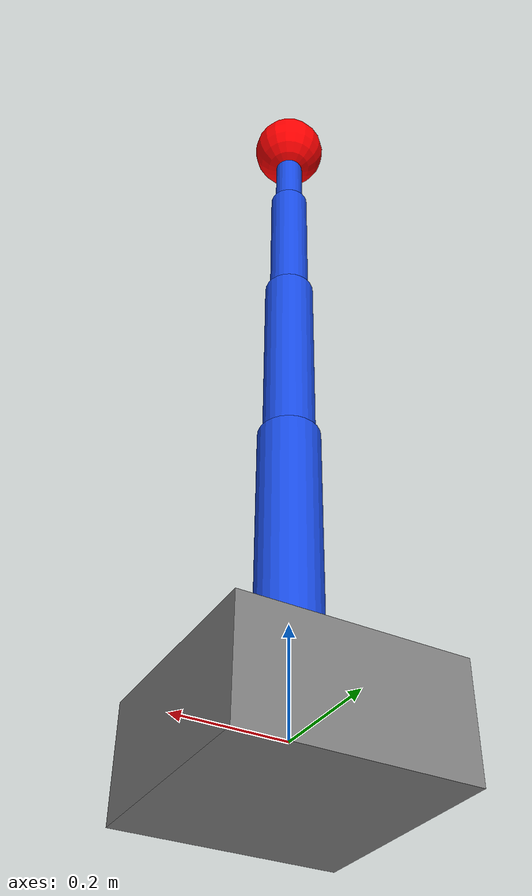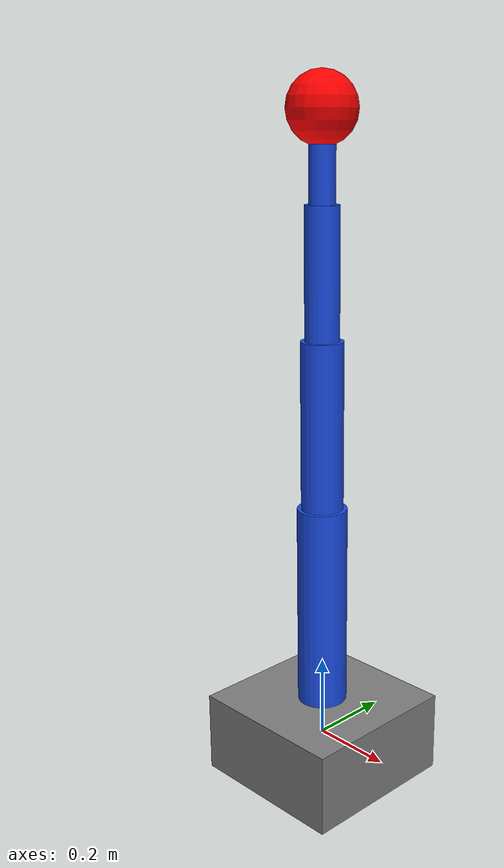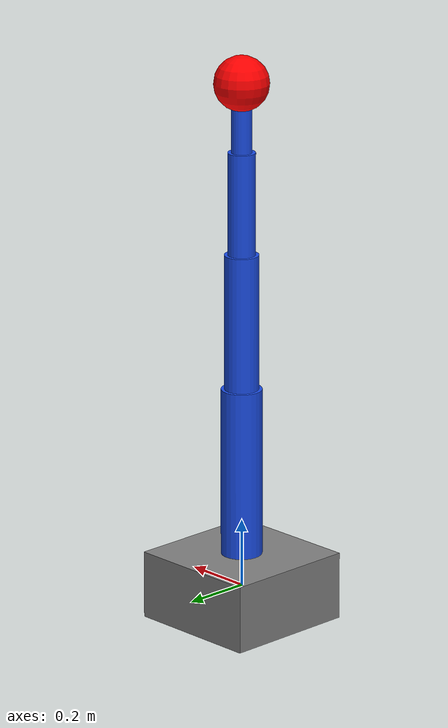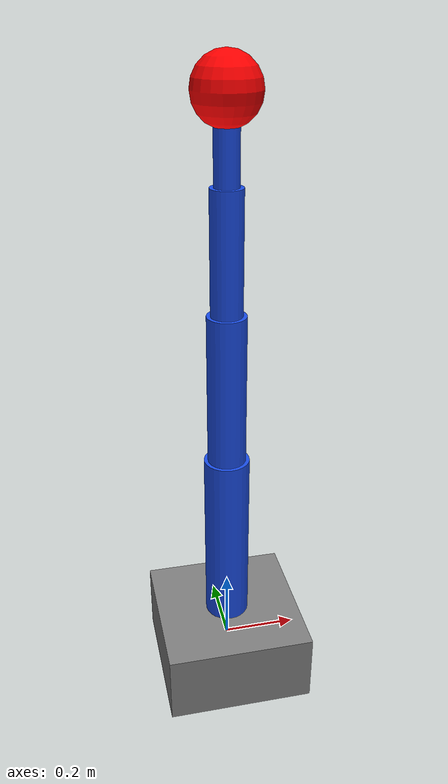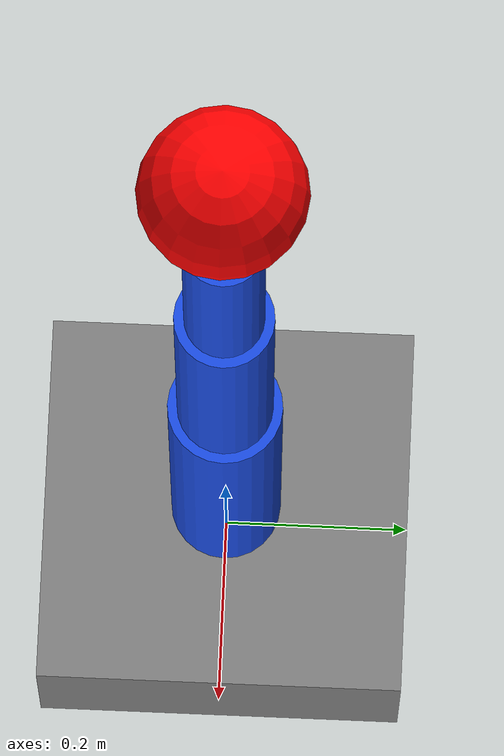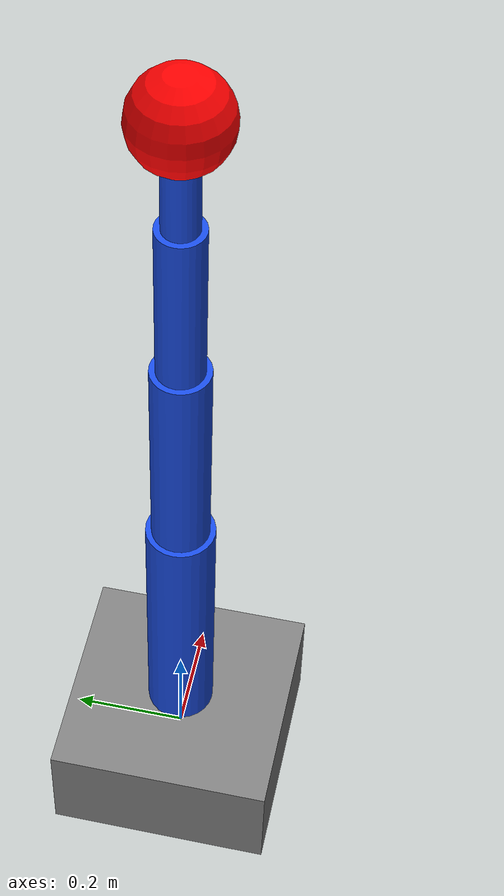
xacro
<?xml version="1.0"?>
<robot xmlns:xacro="http://www.ros.org/wiki/xacro" name="my_robot">

  <!-- Propiedades generales -->
  <xacro:property name="pi" value="3.14159265359"/>

  <!-- Macro para crear eslabones con masa, visual y colision -->
  <xacro:macro name="robot_link" params="name length radius mass">

    <link name="${name}">

      <visual>
        <origin xyz="0 0 ${length/2}" rpy="0 0 0"/>
        <geometry>
          <cylinder length="${length}" radius="${radius}"/>
        </geometry>
        <material name="blue">
          <color rgba="0.1 0.3 0.9 1"/>
        </material>
      </visual>

      <collision>
        <origin xyz="0 0 ${length/2}" rpy="0 0 0"/>
        <geometry>
          <cylinder length="${length}" radius="${radius}"/>
        </geometry>
      </collision>

      <inertial>
        <origin xyz="0 0 ${length/2}" rpy="0 0 0"/>
        <mass value="${mass}"/>
        <inertia
          ixx="${mass*(3*radius*radius+length*length)/12}"
          ixy="0"
          ixz="0"
          iyy="${mass*(3*radius*radius+length*length)/12}"
          iyz="0"
          izz="${mass*radius*radius/2}"/>
      </inertial>

    </link>

  </xacro:macro>

  <!-- Base del robot -->
  <link name="link_base">
    <visual>
      <geometry>
        <box size="0.4 0.4 0.2"/>
      </geometry>
      <material name="gray">
        <color rgba="0.5 0.5 0.5 1"/>
      </material>
    </visual>

    <collision>
      <geometry>
        <box size="0.4 0.4 0.2"/>
      </geometry>
    </collision>

    <inertial>
      <mass value="5.0"/>
      <inertia
        ixx="0.0833"
        ixy="0"
        ixz="0"
        iyy="0.0833"
        iyz="0"
        izz="0.1333"/>
    </inertial>
  </link>

  <!-- Eslabones -->
  <xacro:robot_link name="link_1" length="0.5" radius="0.06" mass="2.0"/>
  <xacro:robot_link name="link_2" length="0.4" radius="0.05" mass="1.5"/>
  <xacro:robot_link name="link_3" length="0.3" radius="0.04" mass="1.0"/>
  <xacro:robot_link name="link_4" length="0.2" radius="0.03" mass="0.5"/>

  <!-- Articulacion 1 -->
  <joint name="joint_1" type="revolute">
    <parent link="link_base"/>
    <child link="link_1"/>
    <origin xyz="0 0 0.1"/>
    <axis xyz="0 0 1"/>
    <limit lower="-3.14" upper="3.14" effort="10" velocity="1"/>
  </joint>

  <!-- Articulacion 2 -->
  <joint name="joint_2" type="revolute">
    <parent link="link_1"/>
    <child link="link_2"/>
    <origin xyz="0 0 0.5"/>
    <axis xyz="0 1 0"/>
    <limit lower="-1.57" upper="1.57" effort="10" velocity="1"/>
  </joint>

  <!-- Articulacion 3 -->
  <joint name="joint_3" type="revolute">
    <parent link="link_2"/>
    <child link="link_3"/>
    <origin xyz="0 0 0.4"/>
    <axis xyz="0 1 0"/>
    <limit lower="-1.57" upper="1.57" effort="10" velocity="1"/>
  </joint>

  <!-- Articulacion 4 -->
  <joint name="joint_4" type="revolute">
    <parent link="link_3"/>
    <child link="link_4"/>
    <origin xyz="0 0 0.3"/>
    <axis xyz="0 1 0"/>
    <limit lower="-1.57" upper="1.57" effort="10" velocity="1"/>
  </joint>

  <!-- Efector final -->
  <link name="link_final">
    <visual>
      <geometry>
        <sphere radius="0.08"/>
      </geometry>
      <material name="red">
        <color rgba="1 0 0 1"/>
      </material>
    </visual>

    <collision>
      <geometry>
        <sphere radius="0.08"/>
      </geometry>
    </collision>

    <inertial>
      <mass value="0.2"/>
      <inertia
        ixx="0.000512"
        ixy="0"
        ixz="0"
        iyy="0.000512"
        iyz="0"
        izz="0.000512"/>
    </inertial>
  </link>

  <joint name="joint_final" type="fixed">
    <parent link="link_4"/>
    <child link="link_final"/>
    <origin xyz="0 0 0.2"/>
  </joint>

</robot>
